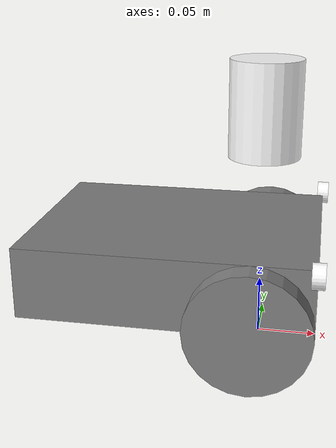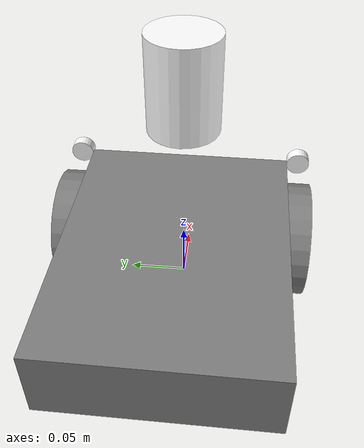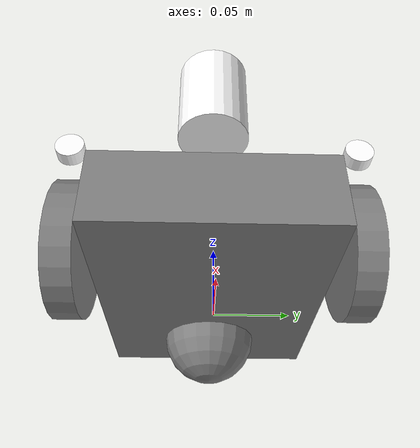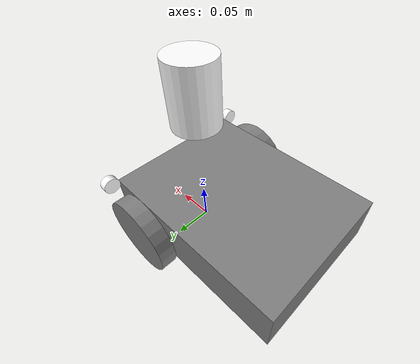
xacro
<?xml version="1.0"?>
<!-- Basic differential drive mobile base -->
<robot xmlns:xacro="http://www.ros.org/wiki/xacro" name="diffbot">
  <xacro:arg name="prefix" default="" />
  <xacro:arg name="use_sim" default="false" />

  <xacro:include filename="$(find classic_diffbot_description)/robots/diffbot_description.urdf.xacro" />

  <xacro:include filename="$(find classic_diffbot_description)/gazebo/diffbot.gazebo.xacro" />

  <!-- Import classic_diffbot ros2_control description -->
  <xacro:include filename="$(find classic_diffbot_description)/ros2_control/diffbot.ros2_control.xacro" />

  <xacro:diffbot prefix="$(arg prefix)" use_sim="$(arg use_sim)"/>
  <xacro:diffbot_gazebo prefix="$(arg prefix)" />

  <xacro:diffbot_ros2_control
    name="diffbot" prefix="$(arg prefix)" use_sim="$(arg use_sim)" />

</robot>

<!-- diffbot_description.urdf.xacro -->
<robot xmlns:xacro="http://ros.org/wiki/xacro">

  <xacro:macro name="diffbot" params="prefix use_sim:=^|false">

  <material name="gray">
    <color rgba="0.5 0.5 0.5 1.0"/>
  </material>
  <material name="white">
    <color rgba="1.0 1.0 1.0 1.0"/>
  </material>

  <xacro:macro name="wheel_macro" params="parent prefix xyz">
    <joint name="${prefix}_joint" type="continuous">
      <origin xyz="${xyz}" rpy="${radians(-90)} 0 0"/>
      <parent link="${parent}"/>
      <child  link="${prefix}_link"/>
      <axis xyz="0 0 1" />
    </joint>
    <transmission name="${prefix}_trans" type="SimpleTransmission">
      <type>transmission_interface/SimpleTransmission</type>
        <actuator name="${prefix}_motor">
          <mechanicalReduction>50</mechanicalReduction>
        </actuator>
      <joint name="${prefix}_joint">
        <hardwareInterface>hardware_interface/VelocityJointInterface</hardwareInterface>
      </joint>
    </transmission>
    <link name="${prefix}_link">
      <inertial>
        <origin xyz="0 0 0" rpy="0 0 0"/>
        <mass value="0.1"/>
        <inertia ixx="0.0001" ixy="0.0" ixz="0.0" iyy="0.0001" iyz="0.0" izz="0.0001"/>
      </inertial>
      <visual>
        <geometry>
          <cylinder radius="0.05" length="0.02" />
        </geometry>
        <material name="gray"/>
      </visual>
      <collision>
        <geometry>
          <cylinder radius="0.05" length="0.02" />
        </geometry>
      </collision>
    </link>
    <gazebo reference="${prefix}_link">
      <material>Gazebo/Gray</material>
      <mu1 value="2.5" />
      <mu2 value="2.5" />
      <kp value="50000" />
      <kd value="10" />
    </gazebo>
  </xacro:macro>

  <link name="base_link"/>

  <joint name="body_joint" type="fixed">
    <parent link="base_link"/>
    <child  link="body_link"/>
    <origin xyz="-0.07 0 0.07" rpy="0 0 0"/>
  </joint>
  <link name="body_link">
    <inertial>
      <origin xyz="0 0 0" rpy="0 0 0"/>
      <mass value="1.0"/>
      <inertia ixx="0.001" ixy="0.0" ixz="0.0" iyy="0.001" iyz="0.0" izz="0.001"/>
    </inertial>
    <visual>
      <origin xyz="0 0 0" rpy="0 0 0" />
      <geometry>
        <box size="0.24 0.18 0.06" />
      </geometry>
      <material name="gray" />
    </visual>
    <collision>
      <origin xyz="0 0 0" rpy="0 0 0" />
      <geometry>
        <box size="0.24 0.178 0.06" />
      </geometry>
    </collision>
  </link>
  <gazebo reference="body_link">
    <material>Gazebo/Gray</material>
  </gazebo>

  <xacro:wheel_macro prefix="left_wheel"  parent="base_link" xyz="0 0.1 0.05"/>
  <xacro:wheel_macro prefix="right_wheel" parent="base_link" xyz="0 -0.1 0.05"/>

  <joint name="ball_joint" type="fixed">
    <parent link="base_link"/>
    <child  link="ball_link"/>
    <origin xyz="-0.14 0 0.04" rpy="0 0 0"/>
  </joint>
  <link name="ball_link">
    <visual>
      <origin xyz="0 0 0" rpy="0 0 0" />
      <geometry>
        <sphere radius="0.04" />
      </geometry>
      <material name="gray" />
    </visual>
    <collision>
      <origin xyz="0 0 0" rpy="0 0 0" />
      <geometry>
        <sphere radius="0.04" />
      </geometry>
    </collision>
  </link>
  <gazebo reference="ball_link">
    <material>Gazebo/Gray</material>
    <mu1 value="0.5" />
    <mu2 value="0.5" />
  </gazebo>

  <joint name="lidar_joint" type="fixed">
    <parent link="base_link"/>
    <child  link="lidar_link"/>
    <origin xyz="0 0 0.2" rpy="0 0 0"/>
  </joint>
  <link name="lidar_link">
    <visual>
      <origin xyz="0 0 0" rpy="0 0 0" />
      <geometry>
        <cylinder radius="0.03" length="0.08" />
      </geometry>
      <material name="white" />
    </visual>
  </link>

  <joint name="camera_joint" type="fixed">
    <parent link="base_link"/>
    <child  link="camera_link"/>
    <origin xyz="0.05 -0.1 0.1" rpy="0 0 0"/>
  </joint>
  <link name="camera_link">
    <visual>
      <origin xyz="0 0 0" rpy="0 -1.57 0" />
      <geometry>
        <cylinder radius="0.01" length="0.01" />
      </geometry>
      <material name="white" />
    </visual>
  </link>

  <joint name="depth_camera_joint" type="fixed">
    <parent link="base_link"/>
    <child  link="depth_camera_link"/>
    <origin xyz="0.05 0.1 0.1" rpy="0 0 0"/>
  </joint>
  <link name="depth_camera_link">
    <visual>
      <origin xyz="0 0 0" rpy="0 -1.57 0" />
      <geometry>
        <cylinder radius="0.01" length="0.01" />
      </geometry>
      <material name="white" />
    </visual>
  </link>

  </xacro:macro>
</robot>
